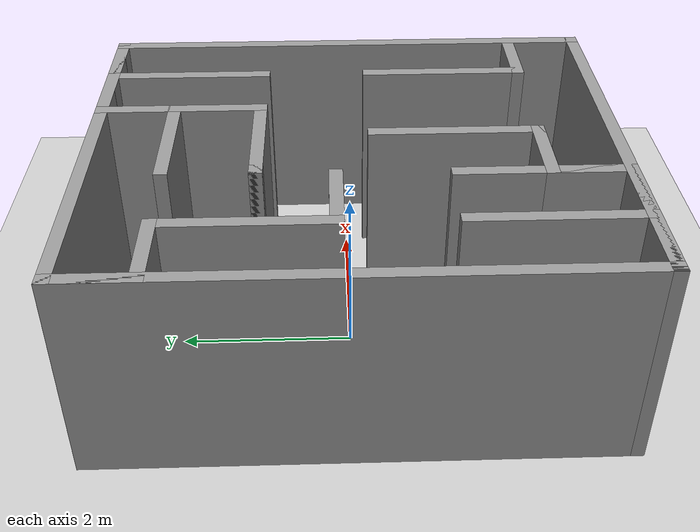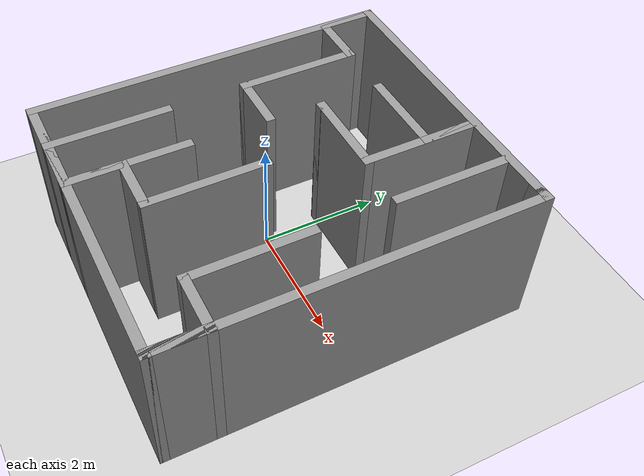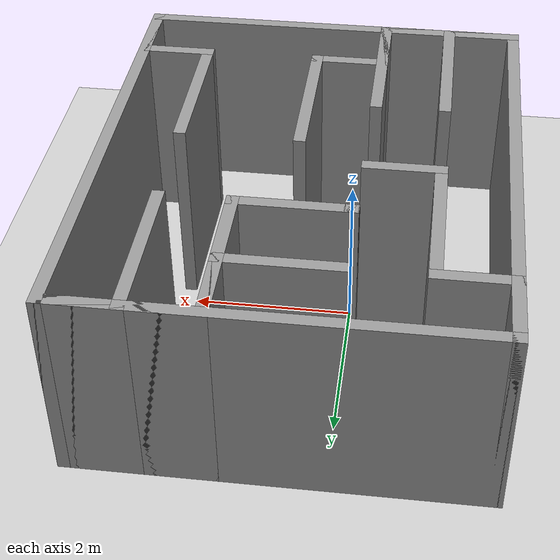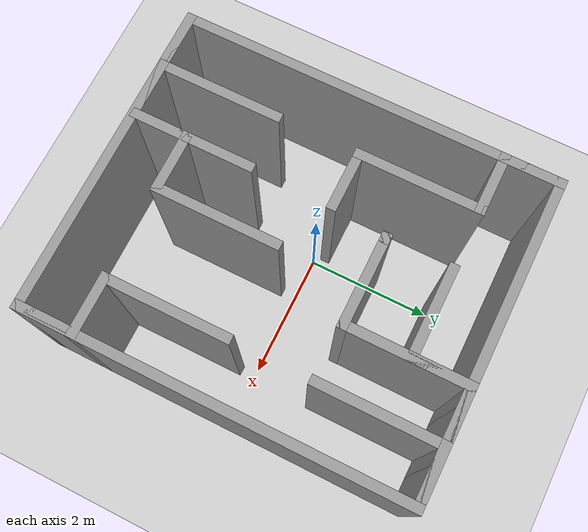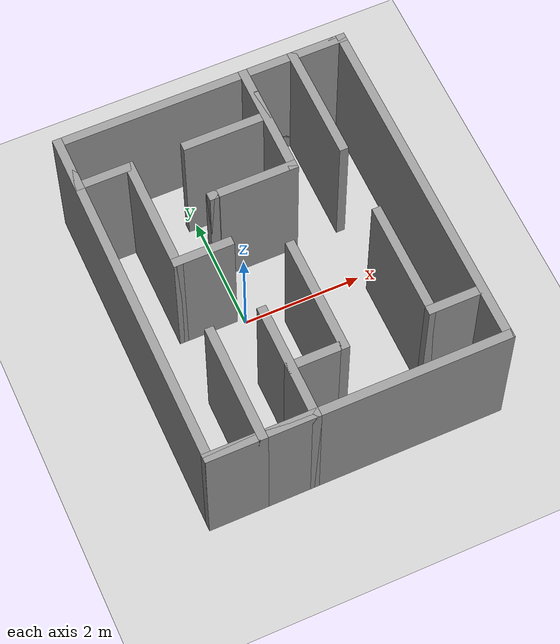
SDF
<sdf version="1.6">
 <world name="default">
  <light name="sun" type="directional">
   <pose>0 0 10 0 -0 0</pose>
   <diffuse>0.8 0.8 0.8 1</diffuse>
   <specular>0.2 0.2 0.2 1</specular>
   <attenuation>
    <range>1000</range>
    <constant>0.9</constant>
    <linear>0.01</linear>
    <quadratic>0.001</quadratic>
   </attenuation>
   <direction>-0.5 0.1 -0.9</direction>
  </light>
  <model name="ground_plane">
   <static>1</static>
   <link name="link">
    <collision name="collision">
     <geometry><plane><normal>0 0 1</normal><size>100 100</size></plane></geometry>
     <surface><friction><ode><mu>100</mu><mu2>50</mu2></ode></friction></surface>
    </collision>
    <visual name="visual">
     <cast_shadows>0</cast_shadows>
     <geometry><plane><normal>0 0 1</normal><size>100 100</size></plane></geometry>
     <material>
      <script><uri>file://media/materials/scripts/gazebo.material</uri><name>Gazebo/Grey</name></script>
     </material>
    </visual>
   </link>
  </model>
  <gravity>0 0 -9.8</gravity>
  <magnetic_field>6e-06 2.3e-05 -4.2e-05</magnetic_field>
  <atmosphere type="adiabatic"/>
  <physics name="default_physics" default="0" type="ode">
   <max_step_size>0.001</max_step_size>
   <real_time_factor>1</real_time_factor>
   <real_time_update_rate>1000</real_time_update_rate>
  </physics>
  <scene><ambient>0.4 0.4 0.4 1</ambient><background>0.7 0.7 0.7 1</background><shadows>1</shadows></scene>
  <spherical_coordinates>
   <surface_model>EARTH_WGS84</surface_model>
   <latitude_deg>0</latitude_deg>
   <longitude_deg>0</longitude_deg>
   <elevation>0</elevation>
   <heading_deg>0</heading_deg>
  </spherical_coordinates>
  <model name="building3">
   <pose>0.544427 -0.070397 0 0 -0 0</pose>
   <link name="Wall_0">
    <collision name="Wall_0_Collision">
     <geometry><box><size>5 0.15 2.5</size></box></geometry>
     <pose>0 0 1.25 0 -0 0</pose>
    </collision>
    <visual name="Wall_0_Visual">
     <pose>0 0 1.25 0 -0 0</pose>
     <geometry><box><size>5 0.15 2.5</size></box></geometry>
     <material>
      <script><uri>file://media/materials/scripts/gazebo.material</uri><name>Gazebo/Grey</name></script>
      <ambient>1 1 1 1</ambient>
     </material>
     <meta><layer>0</layer></meta>
    </visual>
    <pose>1e-06 2.925 0 0 -0 0</pose>
   </link>
   <link name="Wall_1">
    <collision name="Wall_1_Collision">
     <geometry><box><size>6 0.15 2.5</size></box></geometry>
     <pose>0 0 1.25 0 -0 0</pose>
    </collision>
    <visual name="Wall_1_Visual">
     <pose>0 0 1.25 0 -0 0</pose>
     <geometry><box><size>6 0.15 2.5</size></box></geometry>
     <material>
      <script><uri>file://media/materials/scripts/gazebo.material</uri><name>Gazebo/Grey</name></script>
      <ambient>1 1 1 1</ambient>
     </material>
     <meta><layer>0</layer></meta>
    </visual>
    <pose>2.425 0 0 0 0 -1.5708</pose>
   </link>
   <link name="Wall_11">
    <collision name="Wall_11_Collision">
     <geometry><box><size>1 0.15 2.5</size></box></geometry>
     <pose>0 0 1.25 0 -0 0</pose>
    </collision>
    <visual name="Wall_11_Visual">
     <pose>0 0 1.25 0 -0 0</pose>
     <geometry><box><size>1 0.15 2.5</size></box></geometry>
     <material>
      <script><uri>file://media/materials/scripts/gazebo.material</uri><name>Gazebo/Grey</name></script>
      <ambient>1 1 1 1</ambient>
     </material>
     <meta><layer>0</layer></meta>
    </visual>
    <pose>-2 -2.925 0 0 -0 0</pose>
   </link>
   <link name="Wall_12">
    <collision name="Wall_12_Collision">
     <geometry><box><size>2 0.15 2.5</size></box></geometry>
     <pose>0 0 1.25 0 -0 0</pose>
    </collision>
    <visual name="Wall_12_Visual">
     <pose>0 0 1.25 0 -0 0</pose>
     <geometry><box><size>2 0.15 2.5</size></box></geometry>
     <material>
      <script><uri>file://media/materials/scripts/gazebo.material</uri><name>Gazebo/Grey</name></script>
      <ambient>1 1 1 1</ambient>
     </material>
     <meta><layer>0</layer></meta>
    </visual>
    <pose>-1.575 -2 0 0 -0 1.5708</pose>
   </link>
   <link name="Wall_14">
    <collision name="Wall_14_Collision">
     <geometry><box><size>1 0.15 2.5</size></box></geometry>
     <pose>0 0 1.25 0 -0 0</pose>
    </collision>
    <visual name="Wall_14_Visual">
     <pose>0 0 1.25 0 -0 0</pose>
     <geometry><box><size>1 0.15 2.5</size></box></geometry>
     <material>
      <script><uri>file://media/materials/scripts/gazebo.material</uri><name>Gazebo/Grey</name></script>
      <ambient>1 1 1 1</ambient>
     </material>
     <meta><layer>0</layer></meta>
    </visual>
    <pose>-1.15 -2.925 0 0 -0 0</pose>
   </link>
   <link name="Wall_15">
    <collision name="Wall_15_Collision">
     <geometry><box><size>2 0.15 2.5</size></box></geometry>
     <pose>0 0 1.25 0 -0 0</pose>
    </collision>
    <visual name="Wall_15_Visual">
     <pose>0 0 1.25 0 -0 0</pose>
     <geometry><box><size>2 0.15 2.5</size></box></geometry>
     <material>
      <script><uri>file://media/materials/scripts/gazebo.material</uri><name>Gazebo/Grey</name></script>
      <ambient>1 1 1 1</ambient>
     </material>
     <meta><layer>0</layer></meta>
    </visual>
    <pose>-0.724999 -2 0 0 -0 1.5708</pose>
   </link>
   <link name="Wall_17">
    <collision name="Wall_17_Collision">
     <geometry><box><size>1 0.15 2.5</size></box></geometry>
     <pose>0 0 1.25 0 -0 0</pose>
    </collision>
    <visual name="Wall_17_Visual">
     <pose>0 0 1.25 0 -0 0</pose>
     <geometry><box><size>1 0.15 2.5</size></box></geometry>
     <material>
      <script><uri>file://media/materials/scripts/gazebo.material</uri><name>Gazebo/Grey</name></script>
      <ambient>1 1 1 1</ambient>
     </material>
     <meta><layer>0</layer></meta>
    </visual>
    <pose>2.425 -2.5 0 0 -0 1.5708</pose>
   </link>
   <link name="Wall_2">
    <collision name="Wall_2_Collision">
     <geometry><box><size>5 0.15 2.5</size></box></geometry>
     <pose>0 0 1.25 0 -0 0</pose>
    </collision>
    <visual name="Wall_2_Visual">
     <pose>0 0 1.25 0 -0 0</pose>
     <geometry><box><size>5 0.15 2.5</size></box></geometry>
     <material>
      <script><uri>file://media/materials/scripts/gazebo.material</uri><name>Gazebo/Grey</name></script>
      <ambient>1 1 1 1</ambient>
     </material>
     <meta><layer>0</layer></meta>
    </visual>
    <pose>1e-06 -2.925 0 0 -0 3.14159</pose>
   </link>
   <link name="Wall_23">
    <collision name="Wall_23_Collision">
     <geometry><box><size>1 0.15 2.5</size></box></geometry>
     <pose>0 0 1.25 0 -0 0</pose>
    </collision>
    <visual name="Wall_23_Visual">
     <pose>0 0 1.25 0 -0 0</pose>
     <geometry><box><size>1 0.15 2.5</size></box></geometry>
     <material>
      <script><uri>file://media/materials/scripts/gazebo.material</uri><name>Gazebo/Grey</name></script>
      <ambient>1 1 1 1</ambient>
     </material>
     <meta><layer>0</layer></meta>
    </visual>
    <pose>2 2.925 0 0 -0 3.14159</pose>
   </link>
   <link name="Wall_24">
    <collision name="Wall_24_Collision">
     <geometry><box><size>2 0.15 2.5</size></box></geometry>
     <pose>0 0 1.25 0 -0 0</pose>
    </collision>
    <visual name="Wall_24_Visual">
     <pose>0 0 1.25 0 -0 0</pose>
     <geometry><box><size>2 0.15 2.5</size></box></geometry>
     <material>
      <script><uri>file://media/materials/scripts/gazebo.material</uri><name>Gazebo/Grey</name></script>
      <ambient>1 1 1 1</ambient>
     </material>
     <meta><layer>0</layer></meta>
    </visual>
    <pose>1.575 2 0 0 0 -1.5708</pose>
   </link>
   <link name="Wall_26">
    <collision name="Wall_26_Collision">
     <geometry><box><size>1 0.15 2.5</size></box></geometry>
     <pose>0 0 1.25 0 -0 0</pose>
    </collision>
    <visual name="Wall_26_Visual">
     <pose>0 0 1.25 0 -0 0</pose>
     <geometry><box><size>1 0.15 2.5</size></box></geometry>
     <material>
      <script><uri>file://media/materials/scripts/gazebo.material</uri><name>Gazebo/Grey</name></script>
      <ambient>1 1 1 1</ambient>
     </material>
     <meta><layer>0</layer></meta>
    </visual>
    <pose>1.15 2.925 0 0 -0 3.14159</pose>
   </link>
   <link name="Wall_27">
    <collision name="Wall_27_Collision">
     <geometry><box><size>2 0.15 2.5</size></box></geometry>
     <pose>0 0 1.25 0 -0 0</pose>
    </collision>
    <visual name="Wall_27_Visual">
     <pose>0 0 1.25 0 -0 0</pose>
     <geometry><box><size>2 0.15 2.5</size></box></geometry>
     <material>
      <script><uri>file://media/materials/scripts/gazebo.material</uri><name>Gazebo/Grey</name></script>
      <ambient>1 1 1 1</ambient>
     </material>
     <meta><layer>0</layer></meta>
    </visual>
    <pose>0.725001 2 0 0 0 -1.5708</pose>
   </link>
   <link name="Wall_29">
    <collision name="Wall_29_Collision">
     <geometry><box><size>1 0.15 2.5</size></box></geometry>
     <pose>0 0 1.25 0 -0 0</pose>
    </collision>
    <visual name="Wall_29_Visual">
     <pose>0 0 1.25 0 -0 0</pose>
     <geometry><box><size>1 0.15 2.5</size></box></geometry>
     <material>
      <script><uri>file://media/materials/scripts/gazebo.material</uri><name>Gazebo/Grey</name></script>
      <ambient>1 1 1 1</ambient>
     </material>
     <meta><layer>0</layer></meta>
    </visual>
    <pose>0.725001 2.5 0 0 0 -1.5708</pose>
   </link>
   <link name="Wall_3">
    <collision name="Wall_3_Collision">
     <geometry><box><size>6 0.15 2.5</size></box></geometry>
     <pose>0 0 1.25 0 -0 0</pose>
    </collision>
    <visual name="Wall_3_Visual">
     <pose>0 0 1.25 0 -0 0</pose>
     <geometry><box><size>6 0.15 2.5</size></box></geometry>
     <material>
      <script><uri>file://media/materials/scripts/gazebo.material</uri><name>Gazebo/Grey</name></script>
      <ambient>1 1 1 1</ambient>
     </material>
     <meta><layer>0</layer></meta>
    </visual>
    <pose>-2.425 0 0 0 -0 1.5708</pose>
   </link>
   <link name="Wall_30">
    <collision name="Wall_30_Collision">
     <geometry><box><size>1.5 0.15 2.5</size></box></geometry>
     <pose>0 0 1.25 0 -0 0</pose>
    </collision>
    <visual name="Wall_30_Visual">
     <pose>0 0 1.25 0 -0 0</pose>
     <geometry><box><size>1.5 0.15 2.5</size></box></geometry>
     <material>
      <script><uri>file://media/materials/scripts/gazebo.material</uri><name>Gazebo/Grey</name></script>
      <ambient>1 1 1 1</ambient>
     </material>
     <meta><layer>0</layer></meta>
    </visual>
    <pose>0.05 2.075 0 0 -0 3.14159</pose>
   </link>
   <link name="Wall_32">
    <collision name="Wall_32_Collision">
     <geometry><box><size>1 0.15 2.5</size></box></geometry>
     <pose>0 0 1.25 0 -0 0</pose>
    </collision>
    <visual name="Wall_32_Visual">
     <pose>0 0 1.25 0 -0 0</pose>
     <geometry><box><size>1 0.15 2.5</size></box></geometry>
     <material>
      <script><uri>file://media/materials/scripts/gazebo.material</uri><name>Gazebo/Grey</name></script>
      <ambient>1 1 1 1</ambient>
     </material>
     <meta><layer>0</layer></meta>
    </visual>
    <pose>-0.724999 -2.5 0 0 -0 1.5708</pose>
   </link>
   <link name="Wall_33">
    <collision name="Wall_33_Collision">
     <geometry><box><size>1 0.15 2.5</size></box></geometry>
     <pose>0 0 1.25 0 -0 0</pose>
    </collision>
    <visual name="Wall_33_Visual">
     <pose>0 0 1.25 0 -0 0</pose>
     <geometry><box><size>1 0.15 2.5</size></box></geometry>
     <material>
      <script><uri>file://media/materials/scripts/gazebo.material</uri><name>Gazebo/Grey</name></script>
      <ambient>1 1 1 1</ambient>
     </material>
     <meta><layer>0</layer></meta>
    </visual>
    <pose>-0.299999 -2.075 0 0 -0 0</pose>
   </link>
   <link name="Wall_34">
    <collision name="Wall_34_Collision">
     <geometry><box><size>2 0.15 2.5</size></box></geometry>
     <pose>0 0 1.25 0 -0 0</pose>
    </collision>
    <visual name="Wall_34_Visual">
     <pose>0 0 1.25 0 -0 0</pose>
     <geometry><box><size>2 0.15 2.5</size></box></geometry>
     <material>
      <script><uri>file://media/materials/scripts/gazebo.material</uri><name>Gazebo/Grey</name></script>
      <ambient>1 1 1 1</ambient>
     </material>
     <meta><layer>0</layer></meta>
    </visual>
    <pose>0.125001 -1.15 0 0 -0 1.5708</pose>
   </link>
   <link name="Wall_37">
    <collision name="Wall_37_Collision">
     <geometry><box><size>1 0.15 2.5</size></box></geometry>
     <pose>0 0 1.25 0 -0 0</pose>
    </collision>
    <visual name="Wall_37_Visual">
     <pose>0 0 1.25 0 -0 0</pose>
     <geometry><box><size>1 0.15 2.5</size></box></geometry>
     <material>
      <script><uri>file://media/materials/scripts/gazebo.material</uri><name>Gazebo/Grey</name></script>
      <ambient>1 1 1 1</ambient>
     </material>
     <meta><layer>0</layer></meta>
    </visual>
    <pose>2 -2.075 0 0 -0 3.14159</pose>
   </link>
   <link name="Wall_38">
    <collision name="Wall_38_Collision">
     <geometry><box><size>2 0.15 2.5</size></box></geometry>
     <pose>0 0 1.25 0 -0 0</pose>
    </collision>
    <visual name="Wall_38_Visual">
     <pose>0 0 1.25 0 -0 0</pose>
     <geometry><box><size>2 0.15 2.5</size></box></geometry>
     <material>
      <script><uri>file://media/materials/scripts/gazebo.material</uri><name>Gazebo/Grey</name></script>
      <ambient>1 1 1 1</ambient>
     </material>
     <meta><layer>0</layer></meta>
    </visual>
    <pose>1.575 -1.15 0 0 -0 1.5708</pose>
   </link>
   <link name="Wall_40">
    <collision name="Wall_40_Collision">
     <geometry><box><size>1.5 0.15 2.5</size></box></geometry>
     <pose>0 0 1.25 0 -0 0</pose>
    </collision>
    <visual name="Wall_40_Visual">
     <pose>0 0 1.25 0 -0 0</pose>
     <geometry><box><size>1.5 0.15 2.5</size></box></geometry>
     <material>
      <script><uri>file://media/materials/scripts/gazebo.material</uri><name>Gazebo/Grey</name></script>
      <ambient>1 1 1 1</ambient>
     </material>
     <meta><layer>0</layer></meta>
    </visual>
    <pose>0.05 1.075 0 0 -0 3.14159</pose>
   </link>
   <link name="Wall_41">
    <collision name="Wall_41_Collision">
     <geometry><box><size>0.16 0.15 2.5</size></box></geometry>
     <pose>0 0 1.25 0 -0 0</pose>
    </collision>
    <visual name="Wall_41_Visual">
     <pose>0 0 1.25 0 -0 0</pose>
     <geometry><box><size>0.16 0.15 2.5</size></box></geometry>
     <material>
      <script><uri>file://media/materials/scripts/gazebo.material</uri><name>Gazebo/Grey</name></script>
      <ambient>1 1 1 1</ambient>
     </material>
     <meta><layer>0</layer></meta>
    </visual>
    <pose>-0.62 1.075 0 0 -0 0</pose>
   </link>
   <link name="Wall_42">
    <collision name="Wall_42_Collision">
     <geometry><box><size>0.16 0.15 2.5</size></box></geometry>
     <pose>0 0 1.25 0 -0 0</pose>
    </collision>
    <visual name="Wall_42_Visual">
     <pose>0 0 1.25 0 -0 0</pose>
     <geometry><box><size>0.16 0.15 2.5</size></box></geometry>
     <material>
      <script><uri>file://media/materials/scripts/gazebo.material</uri><name>Gazebo/Grey</name></script>
      <ambient>1 1 1 1</ambient>
     </material>
     <meta><layer>0</layer></meta>
    </visual>
    <pose>-0.609999 1.075 0 0 -0 0</pose>
   </link>
   <link name="Wall_6">
    <collision name="Wall_6_Collision">
     <geometry><box><size>1 0.15 2.5</size></box></geometry>
     <pose>0 0 1.25 0 -0 0</pose>
    </collision>
    <visual name="Wall_6_Visual">
     <pose>0 0 1.25 0 -0 0</pose>
     <geometry><box><size>1 0.15 2.5</size></box></geometry>
     <material>
      <script><uri>file://media/materials/scripts/gazebo.material</uri><name>Gazebo/Grey</name></script>
      <ambient>1 1 1 1</ambient>
     </material>
     <meta><layer>0</layer></meta>
    </visual>
    <pose>-2.425 2.5 0 0 0 -1.5708</pose>
   </link>
   <link name="Wall_7">
    <collision name="Wall_7_Collision">
     <geometry><box><size>1 0.15 2.5</size></box></geometry>
     <pose>0 0 1.25 0 -0 0</pose>
    </collision>
    <visual name="Wall_7_Visual">
     <pose>0 0 1.25 0 -0 0</pose>
     <geometry><box><size>1 0.15 2.5</size></box></geometry>
     <material>
      <script><uri>file://media/materials/scripts/gazebo.material</uri><name>Gazebo/Grey</name></script>
      <ambient>1 1 1 1</ambient>
     </material>
     <meta><layer>0</layer></meta>
    </visual>
    <pose>-2 2.075 0 0 -0 0</pose>
   </link>
   <link name="Wall_8">
    <collision name="Wall_8_Collision">
     <geometry><box><size>2 0.15 2.5</size></box></geometry>
     <pose>0 0 1.25 0 -0 0</pose>
    </collision>
    <visual name="Wall_8_Visual">
     <pose>0 0 1.25 0 -0 0</pose>
     <geometry><box><size>2 0.15 2.5</size></box></geometry>
     <material>
      <script><uri>file://media/materials/scripts/gazebo.material</uri><name>Gazebo/Grey</name></script>
      <ambient>1 1 1 1</ambient>
     </material>
     <meta><layer>0</layer></meta>
    </visual>
    <pose>-1.575 1.15 0 0 0 -1.5708</pose>
   </link>
   <link name="Wall_9">
    <collision name="Wall_9_Collision">
     <geometry><box><size>1 0.15 2.5</size></box></geometry>
     <pose>0 0 1.25 0 -0 0</pose>
    </collision>
    <visual name="Wall_9_Visual">
     <pose>0 0 1.25 0 -0 0</pose>
     <geometry><box><size>1 0.15 2.5</size></box></geometry>
     <material>
      <script><uri>file://media/materials/scripts/gazebo.material</uri><name>Gazebo/Grey</name></script>
      <ambient>1 1 1 1</ambient>
     </material>
     <meta><layer>0</layer></meta>
    </visual>
    <pose>-1.15 0.225 0 0 -0 0</pose>
   </link>
   <static>1</static>
  </model>
 </world>
</sdf>
